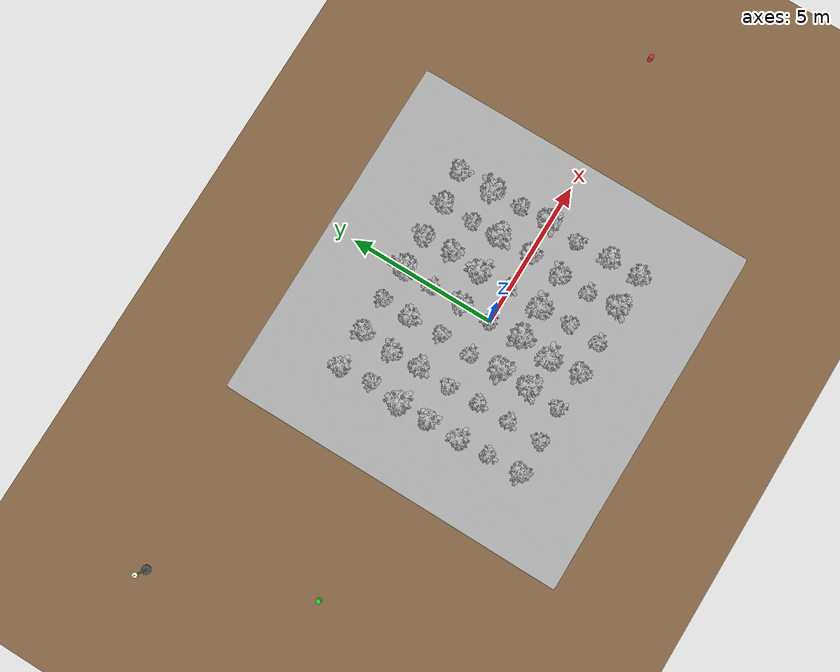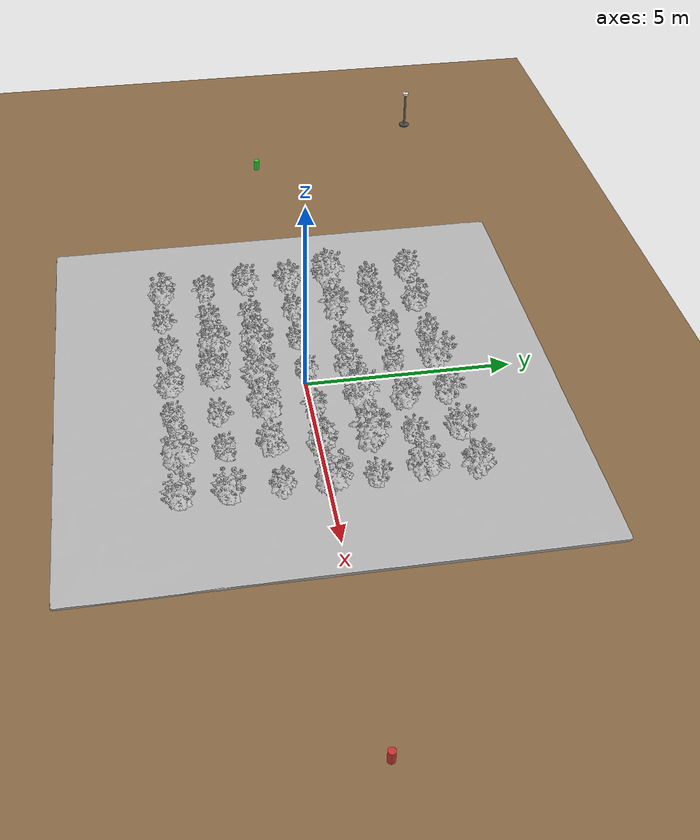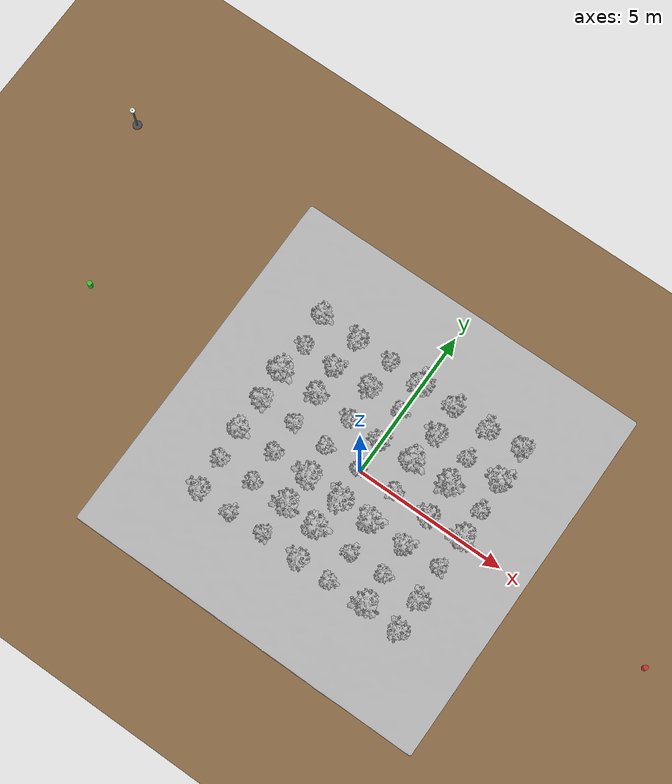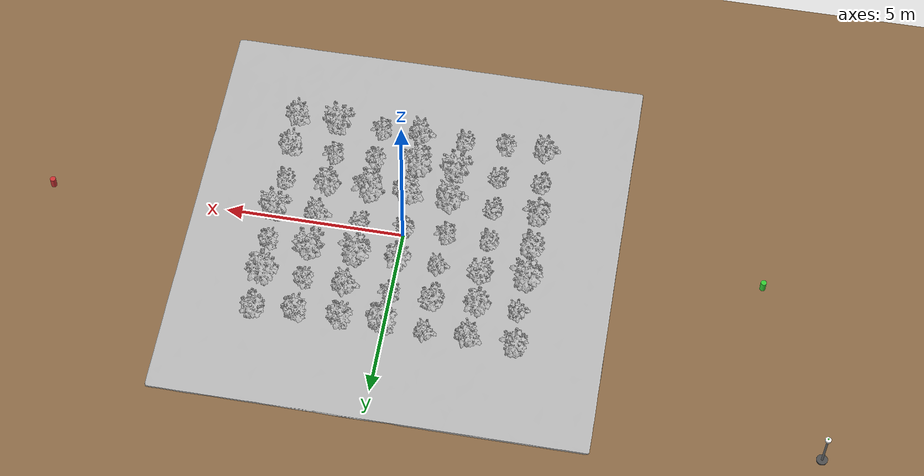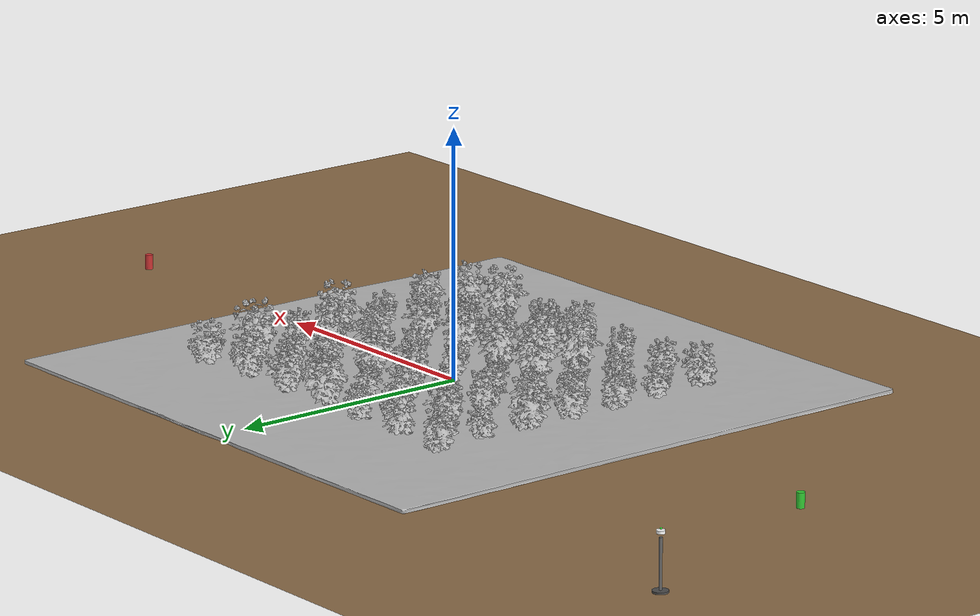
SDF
<?xml version="1.0"?>
<sdf version="1.9">
  <world name="cotton_field">

    <!-- Physics -->
    <physics name="1ms" type="ignored">
      <max_step_size>0.001</max_step_size>
      <real_time_factor>1.0</real_time_factor>
    </physics>

    <!-- Plugins -->
    <plugin filename="gz-sim-physics-system" name="gz::sim::systems::Physics"/>
    <plugin filename="gz-sim-user-commands-system" name="gz::sim::systems::UserCommands"/>
    <plugin filename="gz-sim-scene-broadcaster-system" name="gz::sim::systems::SceneBroadcaster"/>
    <plugin filename="gz-sim-sensors-system" name="gz::sim::systems::Sensors">
      <render_engine>ogre2</render_engine>
    </plugin>
    <plugin filename="gz-sim-imu-system" name="gz::sim::systems::Imu"/>
    <plugin filename="gz-sim-navsat-system" name="gz::sim::systems::NavSat"/>

    <!-- Scene -->
    <scene>
      <ambient>0.8 0.8 0.8 1.0</ambient>
      <background>0.6 0.8 1.0 1</background>
      <sky></sky>
    </scene>

    <!-- Sun -->
    <light type="directional" name="sun">
      <cast_shadows>true</cast_shadows>
      <pose>0 0 10 0 0 0</pose>
      <diffuse>0.9 0.9 0.9 1</diffuse>
      <specular>0.2 0.2 0.2 1</specular>
      <attenuation>
        <range>1000</range>
        <constant>0.9</constant>
        <linear>0.01</linear>
        <quadratic>0.001</quadratic>
      </attenuation>
      <direction>-0.5 0.1 -0.9</direction>
    </light>

    <!-- Ground Plane with collision (replaces unreliable heightmap) -->
    <model name="ground_plane">
      <static>true</static>
      <pose>0 0 0 0 0 0</pose>
      <link name="link">
        <collision name="collision">
          <geometry>
            <plane>
              <normal>0 0 1</normal>
              <size>100 100</size>
            </plane>
          </geometry>
          <surface>
            <friction>
              <ode>
                <mu>1.0</mu>
                <mu2>1.0</mu2>
              </ode>
            </friction>
          </surface>
        </collision>
        <visual name="visual">
          <geometry>
            <plane>
              <normal>0 0 1</normal>
              <size>100 100</size>
            </plane>
          </geometry>
          <material>
            <ambient>0.45 0.35 0.2 1</ambient>
            <diffuse>0.55 0.42 0.28 1</diffuse>
            <specular>0.1 0.1 0.1 1</specular>
          </material>
        </visual>
      </link>
    </model>

    <!-- Field Boundary Markers -->

    <!-- START marker: green pole -->
    <model name="field_marker_start">
      <static>true</static>
      <pose>-10 0 0 0 0 0</pose>
      <link name="pole">
        <visual name="pole_visual">
          <pose>0 0 0.15 0 0 0</pose>
          <geometry>
            <cylinder>
              <radius>0.08</radius>
              <length>0.3</length>
            </cylinder>
          </geometry>
          <material>
            <ambient>0.1 0.7 0.1 1</ambient>
            <diffuse>0.2 0.8 0.2 1</diffuse>
          </material>
        </visual>
      </link>
    </model>

    <!-- END marker: red pole -->
    <model name="field_marker_end">
      <static>true</static>
      <pose>10 0 0 0 0 0</pose>
      <link name="pole">
        <visual name="pole_visual">
          <pose>0 0 0.15 0 0 0</pose>
          <geometry>
            <cylinder>
              <radius>0.08</radius>
              <length>0.3</length>
            </cylinder>
          </geometry>
          <material>
            <ambient>0.7 0.1 0.1 1</ambient>
            <diffuse>0.8 0.2 0.2 1</diffuse>
          </material>
        </visual>
      </link>
    </model>

    <!-- Spherical coordinates for NavSat (Ahmedabad, India) -->
    <spherical_coordinates>
      <surface_model>EARTH_WGS84</surface_model>
      <world_frame_orientation>ENU</world_frame_orientation>
      <latitude_deg>23.0225</latitude_deg>
      <longitude_deg>72.5714</longitude_deg>
      <elevation>53.0</elevation>
      <heading_deg>0</heading_deg>
    </spherical_coordinates>

    <!-- Soil Terrain Surface                                          -->

    <include>
      <name>soil_terrain</name>
      <uri>model://soil_terrain</uri>
      <pose>0 0 0.1 0 0 0</pose>
    </include>

    <!-- Cotton Plants                                                 -->

    <include>
      <name>cotton_plant_r0_p0</name>
      <uri>model://cotton_plant_medium</uri>
      <pose>-3.5662 -3.2004 0 0 0 0.0021</pose>
    </include>

    <include>
      <name>cotton_plant_r0_p1</name>
      <uri>model://cotton_plant_small</uri>
      <pose>-2.3774 -3.2004 0 0 0 4.6208</pose>
    </include>

    <include>
      <name>cotton_plant_r0_p2</name>
      <uri>model://cotton_plant_small</uri>
      <pose>-1.1887 -3.2004 0 0 0 2.3639</pose>
    </include>

    <include>
      <name>cotton_plant_r0_p3</name>
      <uri>model://cotton_plant_medium</uri>
      <pose>0.0000 -3.2004 0 0 0 6.1316</pose>
    </include>

    <include>
      <name>cotton_plant_r0_p4</name>
      <uri>model://cotton_plant_small</uri>
      <pose>1.1887 -3.2004 0 0 0 3.3329</pose>
    </include>

    <include>
      <name>cotton_plant_r0_p5</name>
      <uri>model://cotton_plant_tall</uri>
      <pose>2.3774 -3.2004 0 0 0 0.6728</pose>
    </include>

    <include>
      <name>cotton_plant_r0_p6</name>
      <uri>model://cotton_plant_medium</uri>
      <pose>3.5662 -3.2004 0 0 0 5.6583</pose>
    </include>

    <include>
      <name>cotton_plant_r1_p0</name>
      <uri>model://cotton_plant_small</uri>
      <pose>-3.5662 -2.1336 0 0 0 1.5418</pose>
    </include>

    <include>
      <name>cotton_plant_r1_p1</name>
      <uri>model://cotton_plant_small</uri>
      <pose>-2.3774 -2.1336 0 0 0 1.1830</pose>
    </include>

    <include>
      <name>cotton_plant_r1_p2</name>
      <uri>model://cotton_plant_tall</uri>
      <pose>-1.1887 -2.1336 0 0 0 0.6500</pose>
    </include>

    <include>
      <name>cotton_plant_r1_p3</name>
      <uri>model://cotton_plant_tall</uri>
      <pose>0.0000 -2.1336 0 0 0 3.3578</pose>
    </include>

    <include>
      <name>cotton_plant_r1_p4</name>
      <uri>model://cotton_plant_small</uri>
      <pose>1.1887 -2.1336 0 0 0 4.6308</pose>
    </include>

    <include>
      <name>cotton_plant_r1_p5</name>
      <uri>model://cotton_plant_small</uri>
      <pose>2.3774 -2.1336 0 0 0 3.3867</pose>
    </include>

    <include>
      <name>cotton_plant_r1_p6</name>
      <uri>model://cotton_plant_medium</uri>
      <pose>3.5662 -2.1336 0 0 0 5.4194</pose>
    </include>

    <include>
      <name>cotton_plant_r2_p0</name>
      <uri>model://cotton_plant_medium</uri>
      <pose>-3.5662 -1.0668 0 0 0 2.9655</pose>
    </include>

    <include>
      <name>cotton_plant_r2_p1</name>
      <uri>model://cotton_plant_small</uri>
      <pose>-2.3774 -1.0668 0 0 0 1.4670</pose>
    </include>

    <include>
      <name>cotton_plant_r2_p2</name>
      <uri>model://cotton_plant_tall</uri>
      <pose>-1.1887 -1.0668 0 0 0 0.1447</pose>
    </include>

    <include>
      <name>cotton_plant_r2_p3</name>
      <uri>model://cotton_plant_tall</uri>
      <pose>0.0000 -1.0668 0 0 0 5.7519</pose>
    </include>

    <include>
      <name>cotton_plant_r2_p4</name>
      <uri>model://cotton_plant_tall</uri>
      <pose>1.1887 -1.0668 0 0 0 3.5866</pose>
    </include>

    <include>
      <name>cotton_plant_r2_p5</name>
      <uri>model://cotton_plant_medium</uri>
      <pose>2.3774 -1.0668 0 0 0 3.9180</pose>
    </include>

    <include>
      <name>cotton_plant_r2_p6</name>
      <uri>model://cotton_plant_small</uri>
      <pose>3.5662 -1.0668 0 0 0 2.3602</pose>
    </include>

    <include>
      <name>cotton_plant_r3_p0</name>
      <uri>model://cotton_plant_medium</uri>
      <pose>-3.5662 0.0000 0 0 0 2.2100</pose>
    </include>

    <include>
      <name>cotton_plant_r3_p1</name>
      <uri>model://cotton_plant_small</uri>
      <pose>-2.3774 0.0000 0 0 0 2.2857</pose>
    </include>

    <include>
      <name>cotton_plant_r3_p2</name>
      <uri>model://cotton_plant_small</uri>
      <pose>-1.1887 0.0000 0 0 0 3.3217</pose>
    </include>

    <include>
      <name>cotton_plant_r3_p3</name>
      <uri>model://cotton_plant_small</uri>
      <pose>0.0000 0.0000 0 0 0 2.8514</pose>
    </include>

    <include>
      <name>cotton_plant_r3_p4</name>
      <uri>model://cotton_plant_small</uri>
      <pose>1.1887 0.0000 0 0 0 1.2113</pose>
    </include>

    <include>
      <name>cotton_plant_r3_p5</name>
      <uri>model://cotton_plant_medium</uri>
      <pose>2.3774 0.0000 0 0 0 6.1985</pose>
    </include>

    <include>
      <name>cotton_plant_r3_p6</name>
      <uri>model://cotton_plant_tall</uri>
      <pose>3.5662 0.0000 0 0 0 0.5600</pose>
    </include>

    <include>
      <name>cotton_plant_r4_p0</name>
      <uri>model://cotton_plant_tall</uri>
      <pose>-3.5662 1.0668 0 0 0 2.7252</pose>
    </include>

    <include>
      <name>cotton_plant_r4_p1</name>
      <uri>model://cotton_plant_medium</uri>
      <pose>-2.3774 1.0668 0 0 0 1.1733</pose>
    </include>

    <include>
      <name>cotton_plant_r4_p2</name>
      <uri>model://cotton_plant_small</uri>
      <pose>-1.1887 1.0668 0 0 0 6.2545</pose>
    </include>

    <include>
      <name>cotton_plant_r4_p3</name>
      <uri>model://cotton_plant_medium</uri>
      <pose>0.0000 1.0668 0 0 0 4.2993</pose>
    </include>

    <include>
      <name>cotton_plant_r4_p4</name>
      <uri>model://cotton_plant_tall</uri>
      <pose>1.1887 1.0668 0 0 0 2.7581</pose>
    </include>

    <include>
      <name>cotton_plant_r4_p5</name>
      <uri>model://cotton_plant_tall</uri>
      <pose>2.3774 1.0668 0 0 0 1.1188</pose>
    </include>

    <include>
      <name>cotton_plant_r4_p6</name>
      <uri>model://cotton_plant_small</uri>
      <pose>3.5662 1.0668 0 0 0 5.0649</pose>
    </include>

    <include>
      <name>cotton_plant_r5_p0</name>
      <uri>model://cotton_plant_small</uri>
      <pose>-3.5662 2.1336 0 0 0 0.1866</pose>
    </include>

    <include>
      <name>cotton_plant_r5_p1</name>
      <uri>model://cotton_plant_medium</uri>
      <pose>-2.3774 2.1336 0 0 0 4.0051</pose>
    </include>

    <include>
      <name>cotton_plant_r5_p2</name>
      <uri>model://cotton_plant_medium</uri>
      <pose>-1.1887 2.1336 0 0 0 1.5670</pose>
    </include>

    <include>
      <name>cotton_plant_r5_p3</name>
      <uri>model://cotton_plant_small</uri>
      <pose>0.0000 2.1336 0 0 0 3.2745</pose>
    </include>

    <include>
      <name>cotton_plant_r5_p4</name>
      <uri>model://cotton_plant_medium</uri>
      <pose>1.1887 2.1336 0 0 0 6.1801</pose>
    </include>

    <include>
      <name>cotton_plant_r5_p5</name>
      <uri>model://cotton_plant_small</uri>
      <pose>2.3774 2.1336 0 0 0 4.8275</pose>
    </include>

    <include>
      <name>cotton_plant_r5_p6</name>
      <uri>model://cotton_plant_tall</uri>
      <pose>3.5662 2.1336 0 0 0 4.1874</pose>
    </include>

    <include>
      <name>cotton_plant_r6_p0</name>
      <uri>model://cotton_plant_medium</uri>
      <pose>-3.5662 3.2004 0 0 0 2.9303</pose>
    </include>

    <include>
      <name>cotton_plant_r6_p1</name>
      <uri>model://cotton_plant_medium</uri>
      <pose>-2.3774 3.2004 0 0 0 5.7895</pose>
    </include>

    <include>
      <name>cotton_plant_r6_p2</name>
      <uri>model://cotton_plant_small</uri>
      <pose>-1.1887 3.2004 0 0 0 6.1401</pose>
    </include>

    <include>
      <name>cotton_plant_r6_p3</name>
      <uri>model://cotton_plant_tall</uri>
      <pose>0.0000 3.2004 0 0 0 4.9900</pose>
    </include>

    <include>
      <name>cotton_plant_r6_p4</name>
      <uri>model://cotton_plant_medium</uri>
      <pose>1.1887 3.2004 0 0 0 4.6661</pose>
    </include>

    <include>
      <name>cotton_plant_r6_p5</name>
      <uri>model://cotton_plant_medium</uri>
      <pose>2.3774 3.2004 0 0 0 5.1948</pose>
    </include>

    <include>
      <name>cotton_plant_r6_p6</name>
      <uri>model://cotton_plant_medium</uri>
      <pose>3.5662 3.2004 0 0 0 1.9314</pose>
    </include>

    <!-- RTK Base Station — fixed GPS reference at known coordinates -->
    <model name="rtk_base_station">
      <static>true</static>
      <pose>-12 5 0 0 0 0</pose>
      <link name="base_link">
        <!-- Tripod -->
        <visual name="tripod_visual">
          <pose>0 0 0.5 0 0 0</pose>
          <geometry>
            <cylinder>
              <radius>0.03</radius>
              <length>1.0</length>
            </cylinder>
          </geometry>
          <material>
            <ambient>0.3 0.3 0.3 1</ambient>
            <diffuse>0.4 0.4 0.4 1</diffuse>
          </material>
        </visual>
        <!-- GPS Antenna dome -->
        <visual name="antenna_visual">
          <pose>0 0 1.1 0 0 0</pose>
          <geometry>
            <cylinder>
              <radius>0.08</radius>
              <length>0.06</length>
            </cylinder>
          </geometry>
          <material>
            <ambient>0.9 0.9 0.9 1</ambient>
            <diffuse>1.0 1.0 1.0 1</diffuse>
          </material>
        </visual>
        <!-- Status LED -->
        <visual name="led_visual">
          <pose>0 0 1.16 0 0 0</pose>
          <geometry>
            <sphere>
              <radius>0.02</radius>
            </sphere>
          </geometry>
          <material>
            <ambient>0.1 0.9 0.1 1</ambient>
            <diffuse>0.2 1.0 0.2 1</diffuse>
            <emissive>0.0 0.5 0.0 1</emissive>
          </material>
        </visual>
        <!-- Base plate -->
        <visual name="base_plate_visual">
          <pose>0 0 0.02 0 0 0</pose>
          <geometry>
            <cylinder>
              <radius>0.15</radius>
              <length>0.04</length>
            </cylinder>
          </geometry>
          <material>
            <ambient>0.2 0.2 0.2 1</ambient>
            <diffuse>0.3 0.3 0.3 1</diffuse>
          </material>
        </visual>
      </link>
    </model>

    <!-- Overhead camera for video recording (server-side) -->
    <model name="overhead_camera">
      <static>true</static>
      <!-- Centred over field, 25m up, looking straight down (pitch = +pi/2) -->
      <pose>0 2.5 25 0 1.5708 0</pose>
      <link name="link">
        <sensor name="overhead_cam" type="camera">
          <always_on>true</always_on>
          <update_rate>30</update_rate>
          <visualize>false</visualize>
          <camera>
            <horizontal_fov>1.5708</horizontal_fov>
            <image>
              <width>1280</width>
              <height>720</height>
              <format>R8G8B8</format>
            </image>
            <clip>
              <near>0.1</near>
              <far>100</far>
            </clip>
          </camera>
          <plugin filename="gz-sim-camera-video-recorder-system"
                  name="gz::sim::systems::CameraVideoRecorder">
            <service>/overhead/record_video</service>
            <use_sim_time>true</use_sim_time>
            <fps>30</fps>
            <bitrate>4000000</bitrate>
          </plugin>
        </sensor>
      </link>
    </model>

  </world>
</sdf>

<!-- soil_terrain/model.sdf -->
<sdf version="1.9">
  <model name="soil_terrain">
    <static>true</static>
    <link name="terrain_link">
      <!-- Soil terrain OBJ mesh with texture -->
      <!-- Original mesh: ~2m x 2m (XZ), Y-up, 0.19m thick -->
      <!-- Rotate +90° X to convert Y-up to Z-up -->
      <!-- XZ scale 5 = ~10m x 10m coverage -->
      <!-- Y scale 0.5 = reduces thickness to ~0.09m -->
      <!-- 10% above ground, 90% buried below -->

      <!-- Collision: flat box so wheels ride on top -->
      <collision name="soil_collision">
        <pose>0 0 0 0 0 0</pose>
        <geometry>
          <box>
            <size>12 12 0.09</size>
          </box>
        </geometry>
        <surface>
          <friction>
            <ode>
              <mu>1.0</mu>
              <mu2>1.0</mu2>
            </ode>
          </friction>
        </surface>
      </collision>

      <!-- Visual: textured soil mesh -->
      <visual name="soil_visual">
        <pose>0 0 0 1.5708 0 0</pose>
        <geometry>
          <mesh>
            <uri>../../meshes/soil_terrain.obj</uri>
            <scale>6 0.5 6</scale>
          </mesh>
        </geometry>
      </visual>
    </link>
  </model>
</sdf>

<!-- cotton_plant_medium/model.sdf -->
<sdf version="1.9">
  <model name="cotton_plant_medium">
    <static>true</static>
    <link name="plant_link">
      <!-- Simplified cylinder collision for physics (1.0m tall) -->
      <collision name="plant_collision">
        <pose>0 0 0.5 0 0 0</pose>
        <geometry>
          <cylinder>
            <radius>0.20</radius>
            <length>1.0</length>
          </cylinder>
        </geometry>
      </collision>

      <!-- Cotton plant OBJ mesh with texture (scaled to ~1.0m height) -->
      <!-- Original mesh: Y-up, ~2.075m tall. Rotate +90° X for Z-up. -->
      <!-- Scale 0.4819 gives ~1.0m height; z-offset 0.51 puts bottom at ground -->
      <visual name="plant_visual">
        <pose>0 0 0.51 1.5708 0 0</pose>
        <geometry>
          <mesh>
            <uri>../../meshes/cotton_plant.obj</uri>
            <scale>0.4819 0.4819 0.4819</scale>
          </mesh>
        </geometry>
      </visual>
    </link>
  </model>
</sdf>

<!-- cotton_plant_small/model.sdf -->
<sdf version="1.9">
  <model name="cotton_plant_small">
    <static>true</static>
    <link name="plant_link">
      <!-- Simplified cylinder collision for physics (0.8m tall) -->
      <collision name="plant_collision">
        <pose>0 0 0.4 0 0 0</pose>
        <geometry>
          <cylinder>
            <radius>0.15</radius>
            <length>0.8</length>
          </cylinder>
        </geometry>
      </collision>

      <!-- Cotton plant OBJ mesh with texture (scaled to ~0.8m height) -->
      <!-- Original mesh: Y-up, ~2.075m tall. Rotate +90° X for Z-up. -->
      <!-- Scale 0.3855 gives ~0.8m height; z-offset 0.41 puts bottom at ground -->
      <visual name="plant_visual">
        <pose>0 0 0.41 1.5708 0 0</pose>
        <geometry>
          <mesh>
            <uri>../../meshes/cotton_plant.obj</uri>
            <scale>0.3855 0.3855 0.3855</scale>
          </mesh>
        </geometry>
      </visual>
    </link>
  </model>
</sdf>

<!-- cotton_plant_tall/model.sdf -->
<sdf version="1.9">
  <model name="cotton_plant_tall">
    <static>true</static>
    <link name="plant_link">
      <!-- Simplified cylinder collision for physics (1.2m tall) -->
      <collision name="plant_collision">
        <pose>0 0 0.6 0 0 0</pose>
        <geometry>
          <cylinder>
            <radius>0.25</radius>
            <length>1.2</length>
          </cylinder>
        </geometry>
      </collision>

      <!-- Cotton plant OBJ mesh with texture (scaled to ~1.2m height) -->
      <!-- Original mesh: Y-up, ~2.075m tall. Rotate +90° X for Z-up. -->
      <!-- Scale 0.5783 gives ~1.2m height; z-offset 0.62 puts bottom at ground -->
      <visual name="plant_visual">
        <pose>0 0 0.62 1.5708 0 0</pose>
        <geometry>
          <mesh>
            <uri>../../meshes/cotton_plant.obj</uri>
            <scale>0.5783 0.5783 0.5783</scale>
          </mesh>
        </geometry>
      </visual>
    </link>
  </model>
</sdf>
